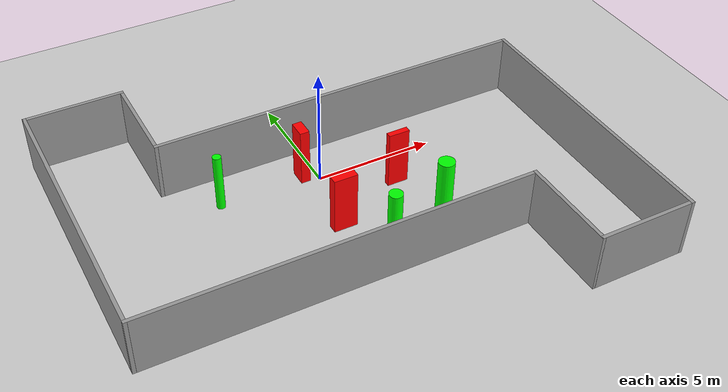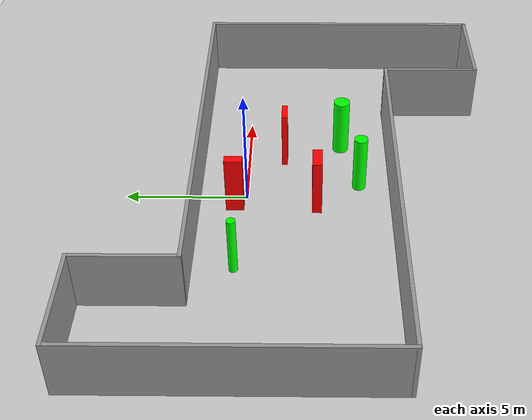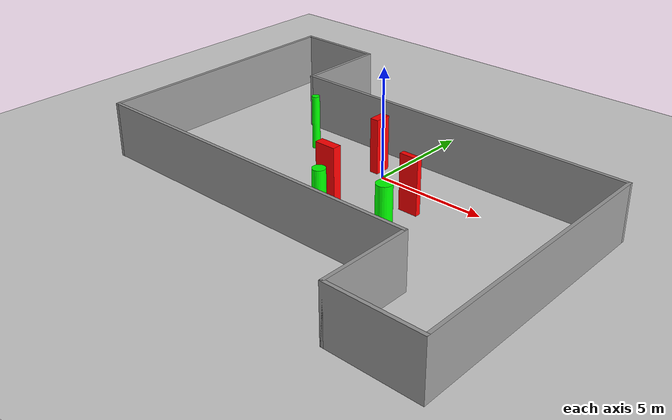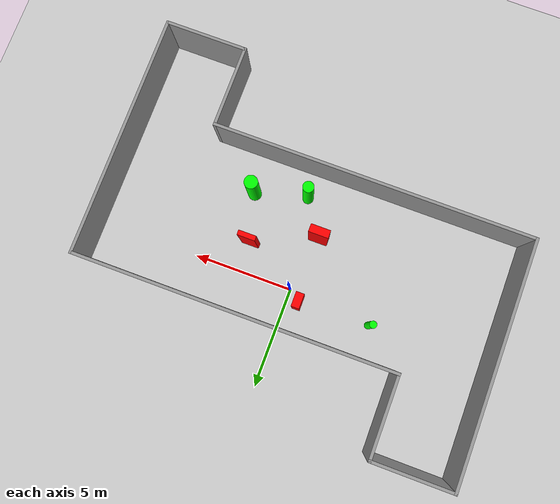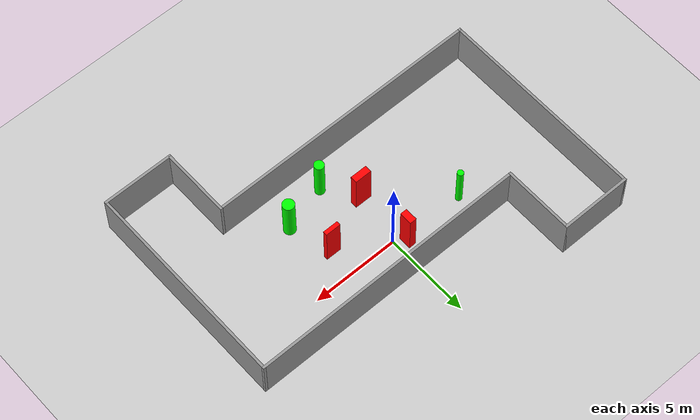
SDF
<sdf version="1.7">
 <world name="default">
  <light name="sun" type="directional">
   <pose>0 0 10 0 -0 0</pose>
   <diffuse>0.8 0.8 0.8 1</diffuse>
   <specular>0.2 0.2 0.2 1</specular>
   <attenuation>
    <range>1000</range>
    <constant>0.9</constant>
    <linear>0.01</linear>
    <quadratic>0.001</quadratic>
   </attenuation>
   <direction>-0.5 0.1 -0.9</direction>
   <spot><inner_angle>0</inner_angle><outer_angle>0</outer_angle><falloff>0</falloff></spot>
  </light>
  <model name="ground_plane">
   <static>1</static>
   <link name="link">
    <collision name="collision">
     <geometry><plane><normal>0 0 1</normal><size>100 100</size></plane></geometry>
     <surface>
      <contact><collide_bitmask>65535</collide_bitmask></contact>
      <friction><ode><mu>100</mu><mu2>50</mu2></ode></friction>
     </surface>
    </collision>
    <visual name="visual">
     <cast_shadows>0</cast_shadows>
     <geometry><plane><normal>0 0 1</normal><size>100 100</size></plane></geometry>
     <material>
      <script><uri>file://media/materials/scripts/gazebo.material</uri><name>Gazebo/Grey</name></script>
     </material>
    </visual>
   </link>
  </model>
  <gravity>0 0 -9.8</gravity>
  <magnetic_field>6e-06 2.3e-05 -4.2e-05</magnetic_field>
  <atmosphere type="adiabatic"/>
  <physics type="ode">
   <max_step_size>0.001</max_step_size>
   <real_time_factor>1</real_time_factor>
   <real_time_update_rate>1000</real_time_update_rate>
  </physics>
  <scene><ambient>0.4 0.4 0.4 1</ambient><background>0.7 0.7 0.7 1</background><shadows>1</shadows></scene>
  <spherical_coordinates>
   <surface_model>EARTH_WGS84</surface_model>
   <latitude_deg>0</latitude_deg>
   <longitude_deg>0</longitude_deg>
   <elevation>0</elevation>
   <heading_deg>0</heading_deg>
  </spherical_coordinates>
  <model name="my_base_walls">
   <link name="Wall_13">
    <collision name="Wall_13_Collision">
     <geometry><box><size>12.15 0.15 2.5</size></box></geometry>
     <pose>0 0 1.25 0 -0 0</pose>
    </collision>
    <visual name="Wall_13_Visual">
     <pose>0 0 1.25 0 -0 0</pose>
     <geometry><box><size>12.15 0.15 2.5</size></box></geometry>
     <material>
      <script><uri>file://media/materials/scripts/gazebo.material</uri><name>Gazebo/Grey</name></script>
      <ambient>1 1 1 1</ambient>
     </material>
     <meta><layer>0</layer></meta>
    </visual>
    <pose>10 -2 0 0 -0 1.5708</pose>
   </link>
   <link name="Wall_15">
    <collision name="Wall_15_Collision">
     <geometry><box><size>16.15 0.15 2.5</size></box></geometry>
     <pose>0 0 1.25 0 -0 0</pose>
    </collision>
    <visual name="Wall_15_Visual">
     <pose>0 0 1.25 0 -0 0</pose>
     <geometry><box><size>16.15 0.15 2.5</size></box></geometry>
     <material>
      <script><uri>file://media/materials/scripts/gazebo.material</uri><name>Gazebo/Grey</name></script>
      <ambient>1 1 1 1</ambient>
     </material>
     <meta><layer>0</layer></meta>
    </visual>
    <pose>2 4 0 0 -0 3.14159</pose>
   </link>
   <link name="Wall_17">
    <collision name="Wall_17_Collision">
     <geometry><box><size>4.15 0.15 2.5</size></box></geometry>
     <pose>0 0 1.25 0 -0 0</pose>
    </collision>
    <visual name="Wall_17_Visual">
     <pose>0 0 1.25 0 -0 0</pose>
     <geometry><box><size>4.15 0.15 2.5</size></box></geometry>
     <material>
      <script><uri>file://media/materials/scripts/gazebo.material</uri><name>Gazebo/Grey</name></script>
      <ambient>1 1 1 1</ambient>
     </material>
     <meta><layer>0</layer></meta>
    </visual>
    <pose>6 -6 0 0 -0 -1.5708</pose>
   </link>
   <link name="Wall_19">
    <collision name="Wall_19_Collision">
     <geometry><box><size>12.15 0.15 2.5</size></box></geometry>
     <pose>0 0 1.25 0 -0 0</pose>
    </collision>
    <visual name="Wall_19_Visual">
     <pose>0 0 1.25 0 -0 0</pose>
     <geometry><box><size>12.15 0.15 2.5</size></box></geometry>
     <material>
      <script><uri>file://media/materials/scripts/gazebo.material</uri><name>Gazebo/Grey</name></script>
      <ambient>1 1 1 1</ambient>
     </material>
     <meta><layer>0</layer></meta>
    </visual>
    <pose>-10 2 0 0 -0 1.5708</pose>
   </link>
   <link name="Wall_21">
    <collision name="Wall_21_Collision">
     <geometry><box><size>4.15 0.15 2.5</size></box></geometry>
     <pose>0 0 1.25 0 -0 0</pose>
    </collision>
    <visual name="Wall_21_Visual">
     <pose>0 0 1.25 0 -0 0</pose>
     <geometry><box><size>4.15 0.15 2.5</size></box></geometry>
     <material>
      <script><uri>file://media/materials/scripts/gazebo.material</uri><name>Gazebo/Grey</name></script>
      <ambient>1 1 1 1</ambient>
     </material>
     <meta><layer>0</layer></meta>
    </visual>
    <pose>-8 8 0 0 -0 0</pose>
   </link>
   <link name="Wall_23">
    <collision name="Wall_23_Collision">
     <geometry><box><size>4.15 0.15 2.5</size></box></geometry>
     <pose>0 0 1.25 0 -0 0</pose>
    </collision>
    <visual name="Wall_23_Visual">
     <pose>0 0 1.25 0 -0 0</pose>
     <geometry><box><size>4.15 0.15 2.5</size></box></geometry>
     <material>
      <script><uri>file://media/materials/scripts/gazebo.material</uri><name>Gazebo/Grey</name></script>
      <ambient>1 1 1 1</ambient>
     </material>
     <meta><layer>0</layer></meta>
    </visual>
    <pose>-6 6 0 0 -0 -1.5708</pose>
   </link>
   <link name="Wall_25">
    <collision name="Wall_25_Collision">
     <geometry><box><size>4.15 0.15 2.5</size></box></geometry>
     <pose>0 0 1.25 0 -0 0</pose>
    </collision>
    <visual name="Wall_25_Visual">
     <pose>0 0 1.25 0 -0 0</pose>
     <geometry><box><size>4.15 0.15 2.5</size></box></geometry>
     <material>
      <script><uri>file://media/materials/scripts/gazebo.material</uri><name>Gazebo/Grey</name></script>
      <ambient>1 1 1 1</ambient>
     </material>
     <meta><layer>0</layer></meta>
    </visual>
    <pose>8 -8 0 0 -0 0</pose>
   </link>
   <link name="Wall_9">
    <collision name="Wall_9_Collision">
     <geometry><box><size>16.15 0.15 2.5</size></box></geometry>
     <pose>0 0 1.25 0 -0 0</pose>
    </collision>
    <visual name="Wall_9_Visual">
     <pose>0 0 1.25 0 -0 0</pose>
     <geometry><box><size>16.15 0.15 2.5</size></box></geometry>
     <material>
      <script><uri>file://media/materials/scripts/gazebo.material</uri><name>Gazebo/Grey</name></script>
      <ambient>1 1 1 1</ambient>
     </material>
     <meta><layer>0</layer></meta>
    </visual>
    <pose>-2 -4 0 0 -0 3.14159</pose>
   </link>
   <static>1</static>
   <pose>-0 -2 0 0 -0 0</pose>
  </model>
  <model name="cylinder1">
   <static>1</static>
   <link name="link">
    <inertial>
     <mass>1</mass>
     <inertia><ixx>0.5</ixx><ixy>0</ixy><ixz>0</ixz><iyy>0.5</iyy><iyz>0</iyz><izz>1</izz></inertia>
    </inertial>
    <collision name="collision">
     <geometry><cylinder><radius>0.3362364458433126</radius><length>2.5</length></cylinder></geometry>
    </collision>
    <visual name="visual">
     <geometry><cylinder><radius>0.3362364458433126</radius><length>2.5</length></cylinder></geometry>
     <material>
      <ambient>0 1 0 1</ambient>
      <diffuse>0 1 0 1</diffuse>
      <specular>0.1 0.1 0.1 1</specular>
      <emissive>0 0 0 0</emissive>
     </material>
    </visual>
   </link>
   <pose>3.3837946898811992 -3.9586443949091734 1.25 0 0 0</pose>
  </model>
  <model name="cylinder2">
   <static>1</static>
   <link name="link">
    <inertial>
     <mass>1</mass>
     <inertia><ixx>0.5</ixx><ixy>0</ixy><ixz>0</ixz><iyy>0.5</iyy><iyz>0</iyz><izz>1</izz></inertia>
    </inertial>
    <collision name="collision">
     <geometry><cylinder><radius>0.17698244844989705</radius><length>2.5</length></cylinder></geometry>
    </collision>
    <visual name="visual">
     <geometry><cylinder><radius>0.17698244844989705</radius><length>2.5</length></cylinder></geometry>
     <material>
      <ambient>0 1 0 1</ambient>
      <diffuse>0 1 0 1</diffuse>
      <specular>0.1 0.1 0.1 1</specular>
      <emissive>0 0 0 0</emissive>
     </material>
    </visual>
   </link>
   <pose>-4.180996975509466 0.32377098024514517 1.25 0 0 0</pose>
  </model>
  <model name="cylinder3">
   <static>1</static>
   <link name="link">
    <inertial>
     <mass>1</mass>
     <inertia><ixx>0.5</ixx><ixy>0</ixy><ixz>0</ixz><iyy>0.5</iyy><iyz>0</iyz><izz>1</izz></inertia>
    </inertial>
    <collision name="collision">
     <geometry><cylinder><radius>0.27871165776492735</radius><length>2.5</length></cylinder></geometry>
    </collision>
    <visual name="visual">
     <geometry><cylinder><radius>0.27871165776492735</radius><length>2.5</length></cylinder></geometry>
     <material>
      <ambient>0 1 0 1</ambient>
      <diffuse>0 1 0 1</diffuse>
      <specular>0.1 0.1 0.1 1</specular>
      <emissive>0 0 0 0</emissive>
     </material>
    </visual>
   </link>
   <pose>0.7760551498174451 -4.663834078576622 1.25 0 0 0</pose>
  </model>
  <model name="box1">
   <static>1</static>
   <link name="link">
    <inertial>
     <mass>1</mass>
     <inertia><ixx>0.083</ixx><ixy>0</ixy><ixz>0</ixz><iyy>0.083</iyy><iyz>0</iyz><izz>0.083</izz></inertia>
    </inertial>
    <collision name="collision">
     <geometry><box><size>0.9816614094639375 0.3947203537522297 2.5</size></box></geometry>
    </collision>
    <visual name="visual">
     <geometry><box><size>0.9816614094639375 0.3947203537522297 2.5</size></box></geometry>
     <material>
      <ambient>1 0 0 1</ambient>
      <diffuse>1 0 0 1</diffuse>
      <specular>0.1 0.1 0.1 1</specular>
      <emissive>0 0 0 0</emissive>
     </material>
    </visual>
    <sensor name="my_contact" type="contact">
     <contact><collision>box_collision</collision><topic>__default_topic__</topic></contact>
    </sensor>
   </link>
   <pose>-0.43054466333682484 -2.884551785927621 1.25 0 0 0</pose>
  </model>
  <model name="box2">
   <static>1</static>
   <link name="link">
    <inertial>
     <mass>1</mass>
     <inertia><ixx>0.083</ixx><ixy>0</ixy><ixz>0</ixz><iyy>0.083</iyy><iyz>0</iyz><izz>0.083</izz></inertia>
    </inertial>
    <collision name="collision">
     <geometry><box><size>0.39473062199707143 0.7266246557904191 2.5</size></box></geometry>
    </collision>
    <visual name="visual">
     <geometry><box><size>0.39473062199707143 0.7266246557904191 2.5</size></box></geometry>
     <material>
      <ambient>1 0 0 1</ambient>
      <diffuse>1 0 0 1</diffuse>
      <specular>0.1 0.1 0.1 1</specular>
      <emissive>0 0 0 0</emissive>
     </material>
    </visual>
    <sensor name="my_contact" type="contact">
     <contact><collision>box_collision</collision><topic>__default_topic__</topic></contact>
    </sensor>
   </link>
   <pose>-0.5776365947059752 0.4583463245017807 1.25 0 0 0</pose>
  </model>
  <model name="box3">
   <static>1</static>
   <link name="link">
    <inertial>
     <mass>1</mass>
     <inertia><ixx>0.083</ixx><ixy>0</ixy><ixz>0</ixz><iyy>0.083</iyy><iyz>0</iyz><izz>0.083</izz></inertia>
    </inertial>
    <collision name="collision">
     <geometry><box><size>0.8809266932545934 0.24190771625946486 2.5</size></box></geometry>
    </collision>
    <visual name="visual">
     <geometry><box><size>0.8809266932545934 0.24190771625946486 2.5</size></box></geometry>
     <material>
      <ambient>1 0 0 1</ambient>
      <diffuse>1 0 0 1</diffuse>
      <specular>0.1 0.1 0.1 1</specular>
      <emissive>0 0 0 0</emissive>
     </material>
    </visual>
    <sensor name="my_contact" type="contact">
     <contact><collision>box_collision</collision><topic>__default_topic__</topic></contact>
    </sensor>
   </link>
   <pose>2.670205306209123 -1.5277372473090622 1.25 0 0 0</pose>
  </model>
 </world>
</sdf>
